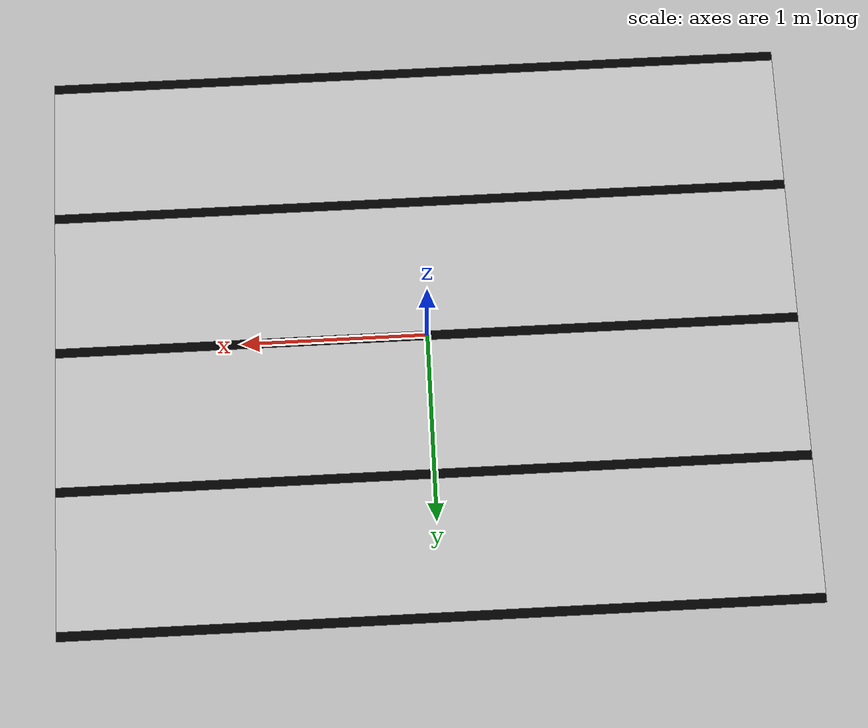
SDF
<?xml version="1.0" ?>
<sdf version="1.9">
  <world name="running_round">

    <!-- Sun -->
    <light type="directional" name="sun">
      <cast_shadows>true</cast_shadows>
      <pose>0 0 10 0 0 0</pose>
      <diffuse>0.8 0.8 0.8 1</diffuse>
      <specular>0.2 0.2 0.2 1</specular>
      <attenuation>
        <range>1000</range>
        <constant>0.9</constant>
        <linear>0.01</linear>
        <quadratic>0.001</quadratic>
      </attenuation>
      <direction>-0.5 0.1 -0.9</direction>
    </light>

    <!-- Custom Ground Plane (White Floor) -->
    <!-- Size: 4m long (x) by 2.95m wide (y) -->
    <!-- 4 tracks * 0.70m = 2.80m -->
    <!-- 3 lines * 0.05m = 0.15m -->
    <!-- Total Width = 2.95m -->
    <model name="arena_floor">
      <static>true</static>
      <link name="link">
        <collision name="collision">
          <geometry>
            <box>
              <size>4 2.95 0.01</size>
            </box>
          </geometry>
        </collision>
        <visual name="visual">
          <geometry>
            <box>
              <size>4 2.95 0.01</size>
            </box>
          </geometry>
          <material>
            <ambient>0.8 0.8 0.8 1</ambient>
            <diffuse>0.8 0.8 0.8 1</diffuse>
            <specular>0.1 0.1 0.1 1</specular>
          </material>
        </visual>
      </link>
    </model>

    <!-- Boundary Lines (Black Separators) -->
    <!-- Line Dimensions: 4m (x) x 0.05m (y) -->
    <!-- Height: 0.001 (flush appearance) -->

    <!-- Y Positions calculation (Centered at 0) -->
    <!-- Total width 2.95. Extent from -1.475 to +1.475 -->
    <!-- Track 1 (0.7m) -> Line 1 (0.05m) -> Track 2 (0.7m) -> Line 2 (0.05m: Center) -> Track 3 (0.7m) -> Line 3 (0.05m) -> Track 4 (0.7m) -->

    <!-- Center Line (Line 2) is at Y=0 -->
    <!-- Line 1 is Y = -0.025 (half center) - 0.7 (track) - 0.025 (half self) = -0.75 -->
    <!-- wait. Center of Line 2 is 0. -->
    <!-- Edge of Line 2 is -0.025. -->
    <!-- Track 2 spans -0.025 to -0.725 -->
    <!-- Line 1 center is -0.725 - 0.025 = -0.75. Correct. -->
    <!-- Line 3 center is +0.75. -->

    <model name="separator_line_center">
      <static>true</static>
      <pose>0 0 0.0055 0 0 0</pose> <!-- On top of floor -->
      <link name="link">
        <visual name="visual">
          <geometry>
            <box>
              <size>4 0.05 0.001</size>
            </box>
          </geometry>
          <material>
            <ambient>0 0 0 1</ambient>
            <diffuse>0 0 0 1</diffuse>
            <specular>0.1 0.1 0.1 1</specular>
          </material>
        </visual>
      </link>
    </model>

    <model name="separator_line_left">
      <static>true</static>
      <pose>0 0.75 0.0055 0 0 0</pose>
      <link name="link">
        <visual name="visual">
          <geometry>
            <box>
              <size>4 0.05 0.001</size>
            </box>
          </geometry>
          <material>
            <ambient>0 0 0 1</ambient>
            <diffuse>0 0 0 1</diffuse>
            <specular>0.1 0.1 0.1 1</specular>
          </material>
        </visual>
      </link>
    </model>

    <model name="separator_line_leftmost">
      <static>true</static>
      <pose>0 1.5 0.0055 0 0 0</pose>
      <link name="link">
        <visual name="visual">
          <geometry>
            <box>
              <size>4 0.05 0.001</size>
            </box>
          </geometry>
          <material>
            <ambient>0 0 0 1</ambient>
            <diffuse>0 0 0 1</diffuse>
            <specular>0.1 0.1 0.1 1</specular>
          </material>
        </visual>
      </link>
    </model>

    <model name="separator_line_right">
      <static>true</static>
      <pose>0 -0.75 0.0055 0 0 0</pose>
      <link name="link">
        <visual name="visual">
          <geometry>
            <box>
              <size>4 0.05 0.001</size>
            </box>
          </geometry>
          <material>
            <ambient>0 0 0 1</ambient>
            <diffuse>0 0 0 1</diffuse>
            <specular>0.1 0.1 0.1 1</specular>
          </material>
        </visual>
      </link>
    </model>

    <model name="separator_line_rightmost">
      <static>true</static>
      <pose>0 -1.5 0.0055 0 0 0</pose>
      <link name="link">
        <visual name="visual">
          <geometry>
            <box>
              <size>4 0.05 0.001</size>
            </box>
          </geometry>
          <material>
            <ambient>0 0 0 1</ambient>
            <diffuse>0 0 0 1</diffuse>
            <specular>0.1 0.1 0.1 1</specular>
          </material>
        </visual>
      </link>
    </model>

  </world>
</sdf>
